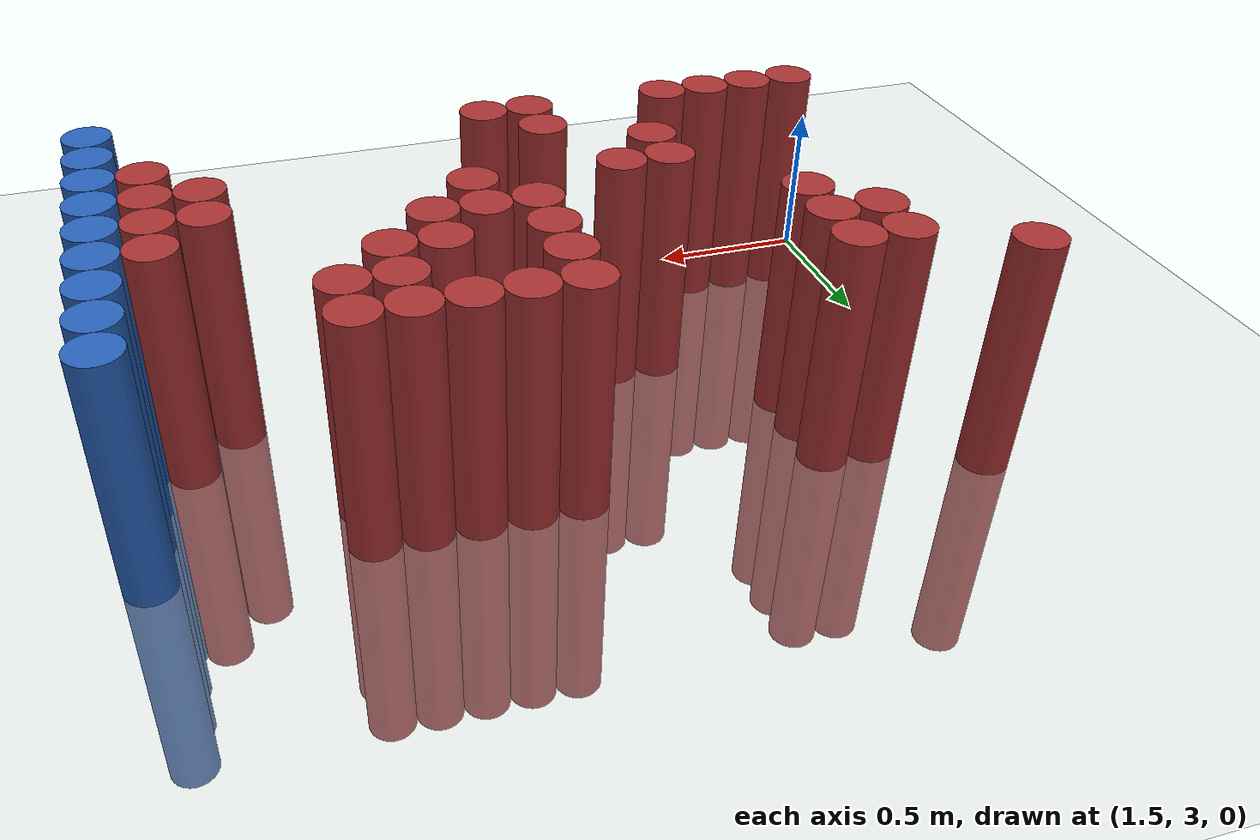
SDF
<sdf version="1.6">
 <world name="default">
  <model name="ground_plane">
   <static>1</static>
   <link name="link">
    <collision name="collision">
     <geometry><plane><normal>0 0 1</normal><size>100 100</size></plane></geometry>
     <surface><friction><ode><mu>100</mu><mu2>50</mu2></ode></friction></surface>
    </collision>
    <visual name="visual">
     <cast_shadows>0</cast_shadows>
     <geometry><plane><normal>0 0 1</normal><size>100 100</size></plane></geometry>
     <material>
      <script><uri>file://media/materials/scripts/gazebo.material</uri><name>Gazebo/Grey</name></script>
     </material>
    </visual>
   </link>
  </model>
  <model name="unit_cylinder_156">
   <static>1</static>
   <pose>3.925000 3.175000 0.000000 0.000000 0.000000 0.000000</pose>
   <link name="link">
    <inertial>
     <mass>1</mass>
     <inertia><ixx>0.145833</ixx><ixy>0</ixy><ixz>0</ixz><iyy>0.145833</iyy><iyz>0</iyz><izz>0.125</izz></inertia>
    </inertial>
    <collision name="collision">
     <geometry><cylinder><radius>0.075000</radius><length>1.5</length></cylinder></geometry>
    </collision>
    <visual name="visual">
     <geometry><cylinder><radius>0.075000</radius><length>1.5</length></cylinder></geometry>
     <material>
      <ambient>0.152000 0.379000 0.720000 1</ambient>
      <diffuse>0.152000 0.379000 0.720000 1</diffuse>
     </material>
     <material>
      <script><name>Gazebo/Grey</name><uri>file://media/materials/scripts/gazebo.material</uri></script>
     </material>
    </visual>
   </link>
  </model>
  <model name="unit_cylinder_158">
   <static>1</static>
   <pose>3.925000 3.325000 0.000000 0.000000 0.000000 0.000000</pose>
   <link name="link">
    <inertial>
     <mass>1</mass>
     <inertia><ixx>0.145833</ixx><ixy>0</ixy><ixz>0</ixz><iyy>0.145833</iyy><iyz>0</iyz><izz>0.125</izz></inertia>
    </inertial>
    <collision name="collision">
     <geometry><cylinder><radius>0.075000</radius><length>1.5</length></cylinder></geometry>
    </collision>
    <visual name="visual">
     <geometry><cylinder><radius>0.075000</radius><length>1.5</length></cylinder></geometry>
     <material>
      <ambient>0.152000 0.379000 0.720000 1</ambient>
      <diffuse>0.152000 0.379000 0.720000 1</diffuse>
     </material>
     <material>
      <script><name>Gazebo/Grey</name><uri>file://media/materials/scripts/gazebo.material</uri></script>
     </material>
    </visual>
   </link>
  </model>
  <model name="unit_cylinder_160">
   <static>1</static>
   <pose>3.925000 3.475000 0.000000 0.000000 0.000000 0.000000</pose>
   <link name="link">
    <inertial>
     <mass>1</mass>
     <inertia><ixx>0.145833</ixx><ixy>0</ixy><ixz>0</ixz><iyy>0.145833</iyy><iyz>0</iyz><izz>0.125</izz></inertia>
    </inertial>
    <collision name="collision">
     <geometry><cylinder><radius>0.075000</radius><length>1.5</length></cylinder></geometry>
    </collision>
    <visual name="visual">
     <geometry><cylinder><radius>0.075000</radius><length>1.5</length></cylinder></geometry>
     <material>
      <ambient>0.152000 0.379000 0.720000 1</ambient>
      <diffuse>0.152000 0.379000 0.720000 1</diffuse>
     </material>
     <material>
      <script><name>Gazebo/Grey</name><uri>file://media/materials/scripts/gazebo.material</uri></script>
     </material>
    </visual>
   </link>
  </model>
  <model name="unit_cylinder_162">
   <static>1</static>
   <pose>3.925000 3.625000 0.000000 0.000000 0.000000 0.000000</pose>
   <link name="link">
    <inertial>
     <mass>1</mass>
     <inertia><ixx>0.145833</ixx><ixy>0</ixy><ixz>0</ixz><iyy>0.145833</iyy><iyz>0</iyz><izz>0.125</izz></inertia>
    </inertial>
    <collision name="collision">
     <geometry><cylinder><radius>0.075000</radius><length>1.5</length></cylinder></geometry>
    </collision>
    <visual name="visual">
     <geometry><cylinder><radius>0.075000</radius><length>1.5</length></cylinder></geometry>
     <material>
      <ambient>0.152000 0.379000 0.720000 1</ambient>
      <diffuse>0.152000 0.379000 0.720000 1</diffuse>
     </material>
     <material>
      <script><name>Gazebo/Grey</name><uri>file://media/materials/scripts/gazebo.material</uri></script>
     </material>
    </visual>
   </link>
  </model>
  <model name="unit_cylinder_164">
   <static>1</static>
   <pose>3.925000 3.775000 0.000000 0.000000 0.000000 0.000000</pose>
   <link name="link">
    <inertial>
     <mass>1</mass>
     <inertia><ixx>0.145833</ixx><ixy>0</ixy><ixz>0</ixz><iyy>0.145833</iyy><iyz>0</iyz><izz>0.125</izz></inertia>
    </inertial>
    <collision name="collision">
     <geometry><cylinder><radius>0.075000</radius><length>1.5</length></cylinder></geometry>
    </collision>
    <visual name="visual">
     <geometry><cylinder><radius>0.075000</radius><length>1.5</length></cylinder></geometry>
     <material>
      <ambient>0.152000 0.379000 0.720000 1</ambient>
      <diffuse>0.152000 0.379000 0.720000 1</diffuse>
     </material>
     <material>
      <script><name>Gazebo/Grey</name><uri>file://media/materials/scripts/gazebo.material</uri></script>
     </material>
    </visual>
   </link>
  </model>
  <model name="unit_cylinder_166">
   <static>1</static>
   <pose>3.925000 3.925000 0.000000 0.000000 0.000000 0.000000</pose>
   <link name="link">
    <inertial>
     <mass>1</mass>
     <inertia><ixx>0.145833</ixx><ixy>0</ixy><ixz>0</ixz><iyy>0.145833</iyy><iyz>0</iyz><izz>0.125</izz></inertia>
    </inertial>
    <collision name="collision">
     <geometry><cylinder><radius>0.075000</radius><length>1.5</length></cylinder></geometry>
    </collision>
    <visual name="visual">
     <geometry><cylinder><radius>0.075000</radius><length>1.5</length></cylinder></geometry>
     <material>
      <ambient>0.152000 0.379000 0.720000 1</ambient>
      <diffuse>0.152000 0.379000 0.720000 1</diffuse>
     </material>
     <material>
      <script><name>Gazebo/Grey</name><uri>file://media/materials/scripts/gazebo.material</uri></script>
     </material>
    </visual>
   </link>
  </model>
  <model name="unit_cylinder_168">
   <static>1</static>
   <pose>3.925000 4.075000 0.000000 0.000000 0.000000 0.000000</pose>
   <link name="link">
    <inertial>
     <mass>1</mass>
     <inertia><ixx>0.145833</ixx><ixy>0</ixy><ixz>0</ixz><iyy>0.145833</iyy><iyz>0</iyz><izz>0.125</izz></inertia>
    </inertial>
    <collision name="collision">
     <geometry><cylinder><radius>0.075000</radius><length>1.5</length></cylinder></geometry>
    </collision>
    <visual name="visual">
     <geometry><cylinder><radius>0.075000</radius><length>1.5</length></cylinder></geometry>
     <material>
      <ambient>0.152000 0.379000 0.720000 1</ambient>
      <diffuse>0.152000 0.379000 0.720000 1</diffuse>
     </material>
     <material>
      <script><name>Gazebo/Grey</name><uri>file://media/materials/scripts/gazebo.material</uri></script>
     </material>
    </visual>
   </link>
  </model>
  <model name="unit_cylinder_170">
   <static>1</static>
   <pose>3.925000 4.225000 0.000000 0.000000 0.000000 0.000000</pose>
   <link name="link">
    <inertial>
     <mass>1</mass>
     <inertia><ixx>0.145833</ixx><ixy>0</ixy><ixz>0</ixz><iyy>0.145833</iyy><iyz>0</iyz><izz>0.125</izz></inertia>
    </inertial>
    <collision name="collision">
     <geometry><cylinder><radius>0.075000</radius><length>1.5</length></cylinder></geometry>
    </collision>
    <visual name="visual">
     <geometry><cylinder><radius>0.075000</radius><length>1.5</length></cylinder></geometry>
     <material>
      <ambient>0.152000 0.379000 0.720000 1</ambient>
      <diffuse>0.152000 0.379000 0.720000 1</diffuse>
     </material>
     <material>
      <script><name>Gazebo/Grey</name><uri>file://media/materials/scripts/gazebo.material</uri></script>
     </material>
    </visual>
   </link>
  </model>
  <model name="unit_cylinder_446">
   <static>1</static>
   <pose>1.525000 4.375000 0.000000 0.000000 0.000000 0.000000</pose>
   <link name="link">
    <inertial>
     <mass>1</mass>
     <inertia><ixx>0.145833</ixx><ixy>0</ixy><ixz>0</ixz><iyy>0.145833</iyy><iyz>0</iyz><izz>0.125</izz></inertia>
    </inertial>
    <collision name="collision">
     <geometry><cylinder><radius>0.075000</radius><length>1.5</length></cylinder></geometry>
    </collision>
    <visual name="visual">
     <geometry><cylinder><radius>0.075000</radius><length>1.5</length></cylinder></geometry>
     <material>
      <ambient>0.648000 0.192000 0.192000 1</ambient>
      <diffuse>0.648000 0.192000 0.192000 1</diffuse>
     </material>
     <material>
      <script><name>Gazebo/Grey</name><uri>file://media/materials/scripts/gazebo.material</uri></script>
     </material>
    </visual>
   </link>
  </model>
  <model name="unit_cylinder_455">
   <static>1</static>
   <pose>1.675000 3.175000 0.000000 0.000000 0.000000 0.000000</pose>
   <link name="link">
    <inertial>
     <mass>1</mass>
     <inertia><ixx>0.145833</ixx><ixy>0</ixy><ixz>0</ixz><iyy>0.145833</iyy><iyz>0</iyz><izz>0.125</izz></inertia>
    </inertial>
    <collision name="collision">
     <geometry><cylinder><radius>0.075000</radius><length>1.5</length></cylinder></geometry>
    </collision>
    <visual name="visual">
     <geometry><cylinder><radius>0.075000</radius><length>1.5</length></cylinder></geometry>
     <material>
      <ambient>0.648000 0.192000 0.192000 1</ambient>
      <diffuse>0.648000 0.192000 0.192000 1</diffuse>
     </material>
     <material>
      <script><name>Gazebo/Grey</name><uri>file://media/materials/scripts/gazebo.material</uri></script>
     </material>
    </visual>
   </link>
  </model>
  <model name="unit_cylinder_463">
   <static>1</static>
   <pose>1.825000 3.175000 0.000000 0.000000 0.000000 0.000000</pose>
   <link name="link">
    <inertial>
     <mass>1</mass>
     <inertia><ixx>0.145833</ixx><ixy>0</ixy><ixz>0</ixz><iyy>0.145833</iyy><iyz>0</iyz><izz>0.125</izz></inertia>
    </inertial>
    <collision name="collision">
     <geometry><cylinder><radius>0.075000</radius><length>1.5</length></cylinder></geometry>
    </collision>
    <visual name="visual">
     <geometry><cylinder><radius>0.075000</radius><length>1.5</length></cylinder></geometry>
     <material>
      <ambient>0.648000 0.192000 0.192000 1</ambient>
      <diffuse>0.648000 0.192000 0.192000 1</diffuse>
     </material>
     <material>
      <script><name>Gazebo/Grey</name><uri>file://media/materials/scripts/gazebo.material</uri></script>
     </material>
    </visual>
   </link>
  </model>
  <model name="unit_cylinder_464">
   <static>1</static>
   <pose>1.825000 4.075000 0.000000 0.000000 0.000000 0.000000</pose>
   <link name="link">
    <inertial>
     <mass>1</mass>
     <inertia><ixx>0.145833</ixx><ixy>0</ixy><ixz>0</ixz><iyy>0.145833</iyy><iyz>0</iyz><izz>0.125</izz></inertia>
    </inertial>
    <collision name="collision">
     <geometry><cylinder><radius>0.075000</radius><length>1.5</length></cylinder></geometry>
    </collision>
    <visual name="visual">
     <geometry><cylinder><radius>0.075000</radius><length>1.5</length></cylinder></geometry>
     <material>
      <ambient>0.648000 0.192000 0.192000 1</ambient>
      <diffuse>0.648000 0.192000 0.192000 1</diffuse>
     </material>
     <material>
      <script><name>Gazebo/Grey</name><uri>file://media/materials/scripts/gazebo.material</uri></script>
     </material>
    </visual>
   </link>
  </model>
  <model name="unit_cylinder_465">
   <static>1</static>
   <pose>1.825000 4.225000 0.000000 0.000000 0.000000 0.000000</pose>
   <link name="link">
    <inertial>
     <mass>1</mass>
     <inertia><ixx>0.145833</ixx><ixy>0</ixy><ixz>0</ixz><iyy>0.145833</iyy><iyz>0</iyz><izz>0.125</izz></inertia>
    </inertial>
    <collision name="collision">
     <geometry><cylinder><radius>0.075000</radius><length>1.5</length></cylinder></geometry>
    </collision>
    <visual name="visual">
     <geometry><cylinder><radius>0.075000</radius><length>1.5</length></cylinder></geometry>
     <material>
      <ambient>0.648000 0.192000 0.192000 1</ambient>
      <diffuse>0.648000 0.192000 0.192000 1</diffuse>
     </material>
     <material>
      <script><name>Gazebo/Grey</name><uri>file://media/materials/scripts/gazebo.material</uri></script>
     </material>
    </visual>
   </link>
  </model>
  <model name="unit_cylinder_472">
   <static>1</static>
   <pose>1.975000 3.175000 0.000000 0.000000 0.000000 0.000000</pose>
   <link name="link">
    <inertial>
     <mass>1</mass>
     <inertia><ixx>0.145833</ixx><ixy>0</ixy><ixz>0</ixz><iyy>0.145833</iyy><iyz>0</iyz><izz>0.125</izz></inertia>
    </inertial>
    <collision name="collision">
     <geometry><cylinder><radius>0.075000</radius><length>1.5</length></cylinder></geometry>
    </collision>
    <visual name="visual">
     <geometry><cylinder><radius>0.075000</radius><length>1.5</length></cylinder></geometry>
     <material>
      <ambient>0.648000 0.192000 0.192000 1</ambient>
      <diffuse>0.648000 0.192000 0.192000 1</diffuse>
     </material>
     <material>
      <script><name>Gazebo/Grey</name><uri>file://media/materials/scripts/gazebo.material</uri></script>
     </material>
    </visual>
   </link>
  </model>
  <model name="unit_cylinder_473">
   <static>1</static>
   <pose>1.975000 3.925000 0.000000 0.000000 0.000000 0.000000</pose>
   <link name="link">
    <inertial>
     <mass>1</mass>
     <inertia><ixx>0.145833</ixx><ixy>0</ixy><ixz>0</ixz><iyy>0.145833</iyy><iyz>0</iyz><izz>0.125</izz></inertia>
    </inertial>
    <collision name="collision">
     <geometry><cylinder><radius>0.075000</radius><length>1.5</length></cylinder></geometry>
    </collision>
    <visual name="visual">
     <geometry><cylinder><radius>0.075000</radius><length>1.5</length></cylinder></geometry>
     <material>
      <ambient>0.648000 0.192000 0.192000 1</ambient>
      <diffuse>0.648000 0.192000 0.192000 1</diffuse>
     </material>
     <material>
      <script><name>Gazebo/Grey</name><uri>file://media/materials/scripts/gazebo.material</uri></script>
     </material>
    </visual>
   </link>
  </model>
  <model name="unit_cylinder_474">
   <static>1</static>
   <pose>1.975000 4.075000 0.000000 0.000000 0.000000 0.000000</pose>
   <link name="link">
    <inertial>
     <mass>1</mass>
     <inertia><ixx>0.145833</ixx><ixy>0</ixy><ixz>0</ixz><iyy>0.145833</iyy><iyz>0</iyz><izz>0.125</izz></inertia>
    </inertial>
    <collision name="collision">
     <geometry><cylinder><radius>0.075000</radius><length>1.5</length></cylinder></geometry>
    </collision>
    <visual name="visual">
     <geometry><cylinder><radius>0.075000</radius><length>1.5</length></cylinder></geometry>
     <material>
      <ambient>0.648000 0.192000 0.192000 1</ambient>
      <diffuse>0.648000 0.192000 0.192000 1</diffuse>
     </material>
     <material>
      <script><name>Gazebo/Grey</name><uri>file://media/materials/scripts/gazebo.material</uri></script>
     </material>
    </visual>
   </link>
  </model>
  <model name="unit_cylinder_475">
   <static>1</static>
   <pose>1.975000 4.225000 0.000000 0.000000 0.000000 0.000000</pose>
   <link name="link">
    <inertial>
     <mass>1</mass>
     <inertia><ixx>0.145833</ixx><ixy>0</ixy><ixz>0</ixz><iyy>0.145833</iyy><iyz>0</iyz><izz>0.125</izz></inertia>
    </inertial>
    <collision name="collision">
     <geometry><cylinder><radius>0.075000</radius><length>1.5</length></cylinder></geometry>
    </collision>
    <visual name="visual">
     <geometry><cylinder><radius>0.075000</radius><length>1.5</length></cylinder></geometry>
     <material>
      <ambient>0.648000 0.192000 0.192000 1</ambient>
      <diffuse>0.648000 0.192000 0.192000 1</diffuse>
     </material>
     <material>
      <script><name>Gazebo/Grey</name><uri>file://media/materials/scripts/gazebo.material</uri></script>
     </material>
    </visual>
   </link>
  </model>
  <model name="unit_cylinder_486">
   <static>1</static>
   <pose>2.125000 3.175000 0.000000 0.000000 0.000000 0.000000</pose>
   <link name="link">
    <inertial>
     <mass>1</mass>
     <inertia><ixx>0.145833</ixx><ixy>0</ixy><ixz>0</ixz><iyy>0.145833</iyy><iyz>0</iyz><izz>0.125</izz></inertia>
    </inertial>
    <collision name="collision">
     <geometry><cylinder><radius>0.075000</radius><length>1.5</length></cylinder></geometry>
    </collision>
    <visual name="visual">
     <geometry><cylinder><radius>0.075000</radius><length>1.5</length></cylinder></geometry>
     <material>
      <ambient>0.648000 0.192000 0.192000 1</ambient>
      <diffuse>0.648000 0.192000 0.192000 1</diffuse>
     </material>
     <material>
      <script><name>Gazebo/Grey</name><uri>file://media/materials/scripts/gazebo.material</uri></script>
     </material>
    </visual>
   </link>
  </model>
  <model name="unit_cylinder_497">
   <static>1</static>
   <pose>2.275000 3.475000 0.000000 0.000000 0.000000 0.000000</pose>
   <link name="link">
    <inertial>
     <mass>1</mass>
     <inertia><ixx>0.145833</ixx><ixy>0</ixy><ixz>0</ixz><iyy>0.145833</iyy><iyz>0</iyz><izz>0.125</izz></inertia>
    </inertial>
    <collision name="collision">
     <geometry><cylinder><radius>0.075000</radius><length>1.5</length></cylinder></geometry>
    </collision>
    <visual name="visual">
     <geometry><cylinder><radius>0.075000</radius><length>1.5</length></cylinder></geometry>
     <material>
      <ambient>0.648000 0.192000 0.192000 1</ambient>
      <diffuse>0.648000 0.192000 0.192000 1</diffuse>
     </material>
     <material>
      <script><name>Gazebo/Grey</name><uri>file://media/materials/scripts/gazebo.material</uri></script>
     </material>
    </visual>
   </link>
  </model>
  <model name="unit_cylinder_498">
   <static>1</static>
   <pose>2.275000 3.625000 0.000000 0.000000 0.000000 0.000000</pose>
   <link name="link">
    <inertial>
     <mass>1</mass>
     <inertia><ixx>0.145833</ixx><ixy>0</ixy><ixz>0</ixz><iyy>0.145833</iyy><iyz>0</iyz><izz>0.125</izz></inertia>
    </inertial>
    <collision name="collision">
     <geometry><cylinder><radius>0.075000</radius><length>1.5</length></cylinder></geometry>
    </collision>
    <visual name="visual">
     <geometry><cylinder><radius>0.075000</radius><length>1.5</length></cylinder></geometry>
     <material>
      <ambient>0.648000 0.192000 0.192000 1</ambient>
      <diffuse>0.648000 0.192000 0.192000 1</diffuse>
     </material>
     <material>
      <script><name>Gazebo/Grey</name><uri>file://media/materials/scripts/gazebo.material</uri></script>
     </material>
    </visual>
   </link>
  </model>
  <model name="unit_cylinder_512">
   <static>1</static>
   <pose>2.425000 3.625000 0.000000 0.000000 0.000000 0.000000</pose>
   <link name="link">
    <inertial>
     <mass>1</mass>
     <inertia><ixx>0.145833</ixx><ixy>0</ixy><ixz>0</ixz><iyy>0.145833</iyy><iyz>0</iyz><izz>0.125</izz></inertia>
    </inertial>
    <collision name="collision">
     <geometry><cylinder><radius>0.075000</radius><length>1.5</length></cylinder></geometry>
    </collision>
    <visual name="visual">
     <geometry><cylinder><radius>0.075000</radius><length>1.5</length></cylinder></geometry>
     <material>
      <ambient>0.648000 0.192000 0.192000 1</ambient>
      <diffuse>0.648000 0.192000 0.192000 1</diffuse>
     </material>
     <material>
      <script><name>Gazebo/Grey</name><uri>file://media/materials/scripts/gazebo.material</uri></script>
     </material>
    </visual>
   </link>
  </model>
  <model name="unit_cylinder_518">
   <static>1</static>
   <pose>2.575000 3.175000 0.000000 0.000000 0.000000 0.000000</pose>
   <link name="link">
    <inertial>
     <mass>1</mass>
     <inertia><ixx>0.145833</ixx><ixy>0</ixy><ixz>0</ixz><iyy>0.145833</iyy><iyz>0</iyz><izz>0.125</izz></inertia>
    </inertial>
    <collision name="collision">
     <geometry><cylinder><radius>0.075000</radius><length>1.5</length></cylinder></geometry>
    </collision>
    <visual name="visual">
     <geometry><cylinder><radius>0.075000</radius><length>1.5</length></cylinder></geometry>
     <material>
      <ambient>0.648000 0.192000 0.192000 1</ambient>
      <diffuse>0.648000 0.192000 0.192000 1</diffuse>
     </material>
     <material>
      <script><name>Gazebo/Grey</name><uri>file://media/materials/scripts/gazebo.material</uri></script>
     </material>
    </visual>
   </link>
  </model>
  <model name="unit_cylinder_519">
   <static>1</static>
   <pose>2.575000 3.325000 0.000000 0.000000 0.000000 0.000000</pose>
   <link name="link">
    <inertial>
     <mass>1</mass>
     <inertia><ixx>0.145833</ixx><ixy>0</ixy><ixz>0</ixz><iyy>0.145833</iyy><iyz>0</iyz><izz>0.125</izz></inertia>
    </inertial>
    <collision name="collision">
     <geometry><cylinder><radius>0.075000</radius><length>1.5</length></cylinder></geometry>
    </collision>
    <visual name="visual">
     <geometry><cylinder><radius>0.075000</radius><length>1.5</length></cylinder></geometry>
     <material>
      <ambient>0.648000 0.192000 0.192000 1</ambient>
      <diffuse>0.648000 0.192000 0.192000 1</diffuse>
     </material>
     <material>
      <script><name>Gazebo/Grey</name><uri>file://media/materials/scripts/gazebo.material</uri></script>
     </material>
    </visual>
   </link>
  </model>
  <model name="unit_cylinder_527">
   <static>1</static>
   <pose>2.725000 3.175000 0.000000 0.000000 0.000000 0.000000</pose>
   <link name="link">
    <inertial>
     <mass>1</mass>
     <inertia><ixx>0.145833</ixx><ixy>0</ixy><ixz>0</ixz><iyy>0.145833</iyy><iyz>0</iyz><izz>0.125</izz></inertia>
    </inertial>
    <collision name="collision">
     <geometry><cylinder><radius>0.075000</radius><length>1.5</length></cylinder></geometry>
    </collision>
    <visual name="visual">
     <geometry><cylinder><radius>0.075000</radius><length>1.5</length></cylinder></geometry>
     <material>
      <ambient>0.648000 0.192000 0.192000 1</ambient>
      <diffuse>0.648000 0.192000 0.192000 1</diffuse>
     </material>
     <material>
      <script><name>Gazebo/Grey</name><uri>file://media/materials/scripts/gazebo.material</uri></script>
     </material>
    </visual>
   </link>
  </model>
  <model name="unit_cylinder_528">
   <static>1</static>
   <pose>2.725000 3.775000 0.000000 0.000000 0.000000 0.000000</pose>
   <link name="link">
    <inertial>
     <mass>1</mass>
     <inertia><ixx>0.145833</ixx><ixy>0</ixy><ixz>0</ixz><iyy>0.145833</iyy><iyz>0</iyz><izz>0.125</izz></inertia>
    </inertial>
    <collision name="collision">
     <geometry><cylinder><radius>0.075000</radius><length>1.5</length></cylinder></geometry>
    </collision>
    <visual name="visual">
     <geometry><cylinder><radius>0.075000</radius><length>1.5</length></cylinder></geometry>
     <material>
      <ambient>0.648000 0.192000 0.192000 1</ambient>
      <diffuse>0.648000 0.192000 0.192000 1</diffuse>
     </material>
     <material>
      <script><name>Gazebo/Grey</name><uri>file://media/materials/scripts/gazebo.material</uri></script>
     </material>
    </visual>
   </link>
  </model>
  <model name="unit_cylinder_529">
   <static>1</static>
   <pose>2.725000 3.925000 0.000000 0.000000 0.000000 0.000000</pose>
   <link name="link">
    <inertial>
     <mass>1</mass>
     <inertia><ixx>0.145833</ixx><ixy>0</ixy><ixz>0</ixz><iyy>0.145833</iyy><iyz>0</iyz><izz>0.125</izz></inertia>
    </inertial>
    <collision name="collision">
     <geometry><cylinder><radius>0.075000</radius><length>1.5</length></cylinder></geometry>
    </collision>
    <visual name="visual">
     <geometry><cylinder><radius>0.075000</radius><length>1.5</length></cylinder></geometry>
     <material>
      <ambient>0.648000 0.192000 0.192000 1</ambient>
      <diffuse>0.648000 0.192000 0.192000 1</diffuse>
     </material>
     <material>
      <script><name>Gazebo/Grey</name><uri>file://media/materials/scripts/gazebo.material</uri></script>
     </material>
    </visual>
   </link>
  </model>
  <model name="unit_cylinder_530">
   <static>1</static>
   <pose>2.725000 4.075000 0.000000 0.000000 0.000000 0.000000</pose>
   <link name="link">
    <inertial>
     <mass>1</mass>
     <inertia><ixx>0.145833</ixx><ixy>0</ixy><ixz>0</ixz><iyy>0.145833</iyy><iyz>0</iyz><izz>0.125</izz></inertia>
    </inertial>
    <collision name="collision">
     <geometry><cylinder><radius>0.075000</radius><length>1.5</length></cylinder></geometry>
    </collision>
    <visual name="visual">
     <geometry><cylinder><radius>0.075000</radius><length>1.5</length></cylinder></geometry>
     <material>
      <ambient>0.648000 0.192000 0.192000 1</ambient>
      <diffuse>0.648000 0.192000 0.192000 1</diffuse>
     </material>
     <material>
      <script><name>Gazebo/Grey</name><uri>file://media/materials/scripts/gazebo.material</uri></script>
     </material>
    </visual>
   </link>
  </model>
  <model name="unit_cylinder_531">
   <static>1</static>
   <pose>2.725000 4.225000 0.000000 0.000000 0.000000 0.000000</pose>
   <link name="link">
    <inertial>
     <mass>1</mass>
     <inertia><ixx>0.145833</ixx><ixy>0</ixy><ixz>0</ixz><iyy>0.145833</iyy><iyz>0</iyz><izz>0.125</izz></inertia>
    </inertial>
    <collision name="collision">
     <geometry><cylinder><radius>0.075000</radius><length>1.5</length></cylinder></geometry>
    </collision>
    <visual name="visual">
     <geometry><cylinder><radius>0.075000</radius><length>1.5</length></cylinder></geometry>
     <material>
      <ambient>0.648000 0.192000 0.192000 1</ambient>
      <diffuse>0.648000 0.192000 0.192000 1</diffuse>
     </material>
     <material>
      <script><name>Gazebo/Grey</name><uri>file://media/materials/scripts/gazebo.material</uri></script>
     </material>
    </visual>
   </link>
  </model>
  <model name="unit_cylinder_538">
   <static>1</static>
   <pose>2.875000 3.625000 0.000000 0.000000 0.000000 0.000000</pose>
   <link name="link">
    <inertial>
     <mass>1</mass>
     <inertia><ixx>0.145833</ixx><ixy>0</ixy><ixz>0</ixz><iyy>0.145833</iyy><iyz>0</iyz><izz>0.125</izz></inertia>
    </inertial>
    <collision name="collision">
     <geometry><cylinder><radius>0.075000</radius><length>1.5</length></cylinder></geometry>
    </collision>
    <visual name="visual">
     <geometry><cylinder><radius>0.075000</radius><length>1.5</length></cylinder></geometry>
     <material>
      <ambient>0.648000 0.192000 0.192000 1</ambient>
      <diffuse>0.648000 0.192000 0.192000 1</diffuse>
     </material>
     <material>
      <script><name>Gazebo/Grey</name><uri>file://media/materials/scripts/gazebo.material</uri></script>
     </material>
    </visual>
   </link>
  </model>
  <model name="unit_cylinder_539">
   <static>1</static>
   <pose>2.875000 3.775000 0.000000 0.000000 0.000000 0.000000</pose>
   <link name="link">
    <inertial>
     <mass>1</mass>
     <inertia><ixx>0.145833</ixx><ixy>0</ixy><ixz>0</ixz><iyy>0.145833</iyy><iyz>0</iyz><izz>0.125</izz></inertia>
    </inertial>
    <collision name="collision">
     <geometry><cylinder><radius>0.075000</radius><length>1.5</length></cylinder></geometry>
    </collision>
    <visual name="visual">
     <geometry><cylinder><radius>0.075000</radius><length>1.5</length></cylinder></geometry>
     <material>
      <ambient>0.648000 0.192000 0.192000 1</ambient>
      <diffuse>0.648000 0.192000 0.192000 1</diffuse>
     </material>
     <material>
      <script><name>Gazebo/Grey</name><uri>file://media/materials/scripts/gazebo.material</uri></script>
     </material>
    </visual>
   </link>
  </model>
  <model name="unit_cylinder_540">
   <static>1</static>
   <pose>2.875000 4.225000 0.000000 0.000000 0.000000 0.000000</pose>
   <link name="link">
    <inertial>
     <mass>1</mass>
     <inertia><ixx>0.145833</ixx><ixy>0</ixy><ixz>0</ixz><iyy>0.145833</iyy><iyz>0</iyz><izz>0.125</izz></inertia>
    </inertial>
    <collision name="collision">
     <geometry><cylinder><radius>0.075000</radius><length>1.5</length></cylinder></geometry>
    </collision>
    <visual name="visual">
     <geometry><cylinder><radius>0.075000</radius><length>1.5</length></cylinder></geometry>
     <material>
      <ambient>0.648000 0.192000 0.192000 1</ambient>
      <diffuse>0.648000 0.192000 0.192000 1</diffuse>
     </material>
     <material>
      <script><name>Gazebo/Grey</name><uri>file://media/materials/scripts/gazebo.material</uri></script>
     </material>
    </visual>
   </link>
  </model>
  <model name="unit_cylinder_545">
   <static>1</static>
   <pose>3.025000 3.775000 0.000000 0.000000 0.000000 0.000000</pose>
   <link name="link">
    <inertial>
     <mass>1</mass>
     <inertia><ixx>0.145833</ixx><ixy>0</ixy><ixz>0</ixz><iyy>0.145833</iyy><iyz>0</iyz><izz>0.125</izz></inertia>
    </inertial>
    <collision name="collision">
     <geometry><cylinder><radius>0.075000</radius><length>1.5</length></cylinder></geometry>
    </collision>
    <visual name="visual">
     <geometry><cylinder><radius>0.075000</radius><length>1.5</length></cylinder></geometry>
     <material>
      <ambient>0.648000 0.192000 0.192000 1</ambient>
      <diffuse>0.648000 0.192000 0.192000 1</diffuse>
     </material>
     <material>
      <script><name>Gazebo/Grey</name><uri>file://media/materials/scripts/gazebo.material</uri></script>
     </material>
    </visual>
   </link>
  </model>
  <model name="unit_cylinder_546">
   <static>1</static>
   <pose>3.025000 3.925000 0.000000 0.000000 0.000000 0.000000</pose>
   <link name="link">
    <inertial>
     <mass>1</mass>
     <inertia><ixx>0.145833</ixx><ixy>0</ixy><ixz>0</ixz><iyy>0.145833</iyy><iyz>0</iyz><izz>0.125</izz></inertia>
    </inertial>
    <collision name="collision">
     <geometry><cylinder><radius>0.075000</radius><length>1.5</length></cylinder></geometry>
    </collision>
    <visual name="visual">
     <geometry><cylinder><radius>0.075000</radius><length>1.5</length></cylinder></geometry>
     <material>
      <ambient>0.648000 0.192000 0.192000 1</ambient>
      <diffuse>0.648000 0.192000 0.192000 1</diffuse>
     </material>
     <material>
      <script><name>Gazebo/Grey</name><uri>file://media/materials/scripts/gazebo.material</uri></script>
     </material>
    </visual>
   </link>
  </model>
  <model name="unit_cylinder_547">
   <static>1</static>
   <pose>3.025000 4.225000 0.000000 0.000000 0.000000 0.000000</pose>
   <link name="link">
    <inertial>
     <mass>1</mass>
     <inertia><ixx>0.145833</ixx><ixy>0</ixy><ixz>0</ixz><iyy>0.145833</iyy><iyz>0</iyz><izz>0.125</izz></inertia>
    </inertial>
    <collision name="collision">
     <geometry><cylinder><radius>0.075000</radius><length>1.5</length></cylinder></geometry>
    </collision>
    <visual name="visual">
     <geometry><cylinder><radius>0.075000</radius><length>1.5</length></cylinder></geometry>
     <material>
      <ambient>0.648000 0.192000 0.192000 1</ambient>
      <diffuse>0.648000 0.192000 0.192000 1</diffuse>
     </material>
     <material>
      <script><name>Gazebo/Grey</name><uri>file://media/materials/scripts/gazebo.material</uri></script>
     </material>
    </visual>
   </link>
  </model>
  <model name="unit_cylinder_550">
   <static>1</static>
   <pose>3.175000 3.925000 0.000000 0.000000 0.000000 0.000000</pose>
   <link name="link">
    <inertial>
     <mass>1</mass>
     <inertia><ixx>0.145833</ixx><ixy>0</ixy><ixz>0</ixz><iyy>0.145833</iyy><iyz>0</iyz><izz>0.125</izz></inertia>
    </inertial>
    <collision name="collision">
     <geometry><cylinder><radius>0.075000</radius><length>1.5</length></cylinder></geometry>
    </collision>
    <visual name="visual">
     <geometry><cylinder><radius>0.075000</radius><length>1.5</length></cylinder></geometry>
     <material>
      <ambient>0.648000 0.192000 0.192000 1</ambient>
      <diffuse>0.648000 0.192000 0.192000 1</diffuse>
     </material>
     <material>
      <script><name>Gazebo/Grey</name><uri>file://media/materials/scripts/gazebo.material</uri></script>
     </material>
    </visual>
   </link>
  </model>
  <model name="unit_cylinder_551">
   <static>1</static>
   <pose>3.175000 4.075000 0.000000 0.000000 0.000000 0.000000</pose>
   <link name="link">
    <inertial>
     <mass>1</mass>
     <inertia><ixx>0.145833</ixx><ixy>0</ixy><ixz>0</ixz><iyy>0.145833</iyy><iyz>0</iyz><izz>0.125</izz></inertia>
    </inertial>
    <collision name="collision">
     <geometry><cylinder><radius>0.075000</radius><length>1.5</length></cylinder></geometry>
    </collision>
    <visual name="visual">
     <geometry><cylinder><radius>0.075000</radius><length>1.5</length></cylinder></geometry>
     <material>
      <ambient>0.648000 0.192000 0.192000 1</ambient>
      <diffuse>0.648000 0.192000 0.192000 1</diffuse>
     </material>
     <material>
      <script><name>Gazebo/Grey</name><uri>file://media/materials/scripts/gazebo.material</uri></script>
     </material>
    </visual>
   </link>
  </model>
  <model name="unit_cylinder_552">
   <static>1</static>
   <pose>3.175000 4.225000 0.000000 0.000000 0.000000 0.000000</pose>
   <link name="link">
    <inertial>
     <mass>1</mass>
     <inertia><ixx>0.145833</ixx><ixy>0</ixy><ixz>0</ixz><iyy>0.145833</iyy><iyz>0</iyz><izz>0.125</izz></inertia>
    </inertial>
    <collision name="collision">
     <geometry><cylinder><radius>0.075000</radius><length>1.5</length></cylinder></geometry>
    </collision>
    <visual name="visual">
     <geometry><cylinder><radius>0.075000</radius><length>1.5</length></cylinder></geometry>
     <material>
      <ambient>0.648000 0.192000 0.192000 1</ambient>
      <diffuse>0.648000 0.192000 0.192000 1</diffuse>
     </material>
     <material>
      <script><name>Gazebo/Grey</name><uri>file://media/materials/scripts/gazebo.material</uri></script>
     </material>
    </visual>
   </link>
  </model>
  <model name="unit_cylinder_554">
   <static>1</static>
   <pose>3.325000 4.075000 0.000000 0.000000 0.000000 0.000000</pose>
   <link name="link">
    <inertial>
     <mass>1</mass>
     <inertia><ixx>0.145833</ixx><ixy>0</ixy><ixz>0</ixz><iyy>0.145833</iyy><iyz>0</iyz><izz>0.125</izz></inertia>
    </inertial>
    <collision name="collision">
     <geometry><cylinder><radius>0.075000</radius><length>1.5</length></cylinder></geometry>
    </collision>
    <visual name="visual">
     <geometry><cylinder><radius>0.075000</radius><length>1.5</length></cylinder></geometry>
     <material>
      <ambient>0.648000 0.192000 0.192000 1</ambient>
      <diffuse>0.648000 0.192000 0.192000 1</diffuse>
     </material>
     <material>
      <script><name>Gazebo/Grey</name><uri>file://media/materials/scripts/gazebo.material</uri></script>
     </material>
    </visual>
   </link>
  </model>
  <model name="unit_cylinder_555">
   <static>1</static>
   <pose>3.325000 4.225000 0.000000 0.000000 0.000000 0.000000</pose>
   <link name="link">
    <inertial>
     <mass>1</mass>
     <inertia><ixx>0.145833</ixx><ixy>0</ixy><ixz>0</ixz><iyy>0.145833</iyy><iyz>0</iyz><izz>0.125</izz></inertia>
    </inertial>
    <collision name="collision">
     <geometry><cylinder><radius>0.075000</radius><length>1.5</length></cylinder></geometry>
    </collision>
    <visual name="visual">
     <geometry><cylinder><radius>0.075000</radius><length>1.5</length></cylinder></geometry>
     <material>
      <ambient>0.648000 0.192000 0.192000 1</ambient>
      <diffuse>0.648000 0.192000 0.192000 1</diffuse>
     </material>
     <material>
      <script><name>Gazebo/Grey</name><uri>file://media/materials/scripts/gazebo.material</uri></script>
     </material>
    </visual>
   </link>
  </model>
  <model name="unit_cylinder_573">
   <static>1</static>
   <pose>3.625000 3.475000 0.000000 0.000000 0.000000 0.000000</pose>
   <link name="link">
    <inertial>
     <mass>1</mass>
     <inertia><ixx>0.145833</ixx><ixy>0</ixy><ixz>0</ixz><iyy>0.145833</iyy><iyz>0</iyz><izz>0.125</izz></inertia>
    </inertial>
    <collision name="collision">
     <geometry><cylinder><radius>0.075000</radius><length>1.5</length></cylinder></geometry>
    </collision>
    <visual name="visual">
     <geometry><cylinder><radius>0.075000</radius><length>1.5</length></cylinder></geometry>
     <material>
      <ambient>0.648000 0.192000 0.192000 1</ambient>
      <diffuse>0.648000 0.192000 0.192000 1</diffuse>
     </material>
     <material>
      <script><name>Gazebo/Grey</name><uri>file://media/materials/scripts/gazebo.material</uri></script>
     </material>
    </visual>
   </link>
  </model>
  <model name="unit_cylinder_574">
   <static>1</static>
   <pose>3.625000 3.625000 0.000000 0.000000 0.000000 0.000000</pose>
   <link name="link">
    <inertial>
     <mass>1</mass>
     <inertia><ixx>0.145833</ixx><ixy>0</ixy><ixz>0</ixz><iyy>0.145833</iyy><iyz>0</iyz><izz>0.125</izz></inertia>
    </inertial>
    <collision name="collision">
     <geometry><cylinder><radius>0.075000</radius><length>1.5</length></cylinder></geometry>
    </collision>
    <visual name="visual">
     <geometry><cylinder><radius>0.075000</radius><length>1.5</length></cylinder></geometry>
     <material>
      <ambient>0.648000 0.192000 0.192000 1</ambient>
      <diffuse>0.648000 0.192000 0.192000 1</diffuse>
     </material>
     <material>
      <script><name>Gazebo/Grey</name><uri>file://media/materials/scripts/gazebo.material</uri></script>
     </material>
    </visual>
   </link>
  </model>
  <model name="unit_cylinder_592">
   <static>1</static>
   <pose>3.775000 3.325000 0.000000 0.000000 0.000000 0.000000</pose>
   <link name="link">
    <inertial>
     <mass>1</mass>
     <inertia><ixx>0.145833</ixx><ixy>0</ixy><ixz>0</ixz><iyy>0.145833</iyy><iyz>0</iyz><izz>0.125</izz></inertia>
    </inertial>
    <collision name="collision">
     <geometry><cylinder><radius>0.075000</radius><length>1.5</length></cylinder></geometry>
    </collision>
    <visual name="visual">
     <geometry><cylinder><radius>0.075000</radius><length>1.5</length></cylinder></geometry>
     <material>
      <ambient>0.648000 0.192000 0.192000 1</ambient>
      <diffuse>0.648000 0.192000 0.192000 1</diffuse>
     </material>
     <material>
      <script><name>Gazebo/Grey</name><uri>file://media/materials/scripts/gazebo.material</uri></script>
     </material>
    </visual>
   </link>
  </model>
  <model name="unit_cylinder_593">
   <static>1</static>
   <pose>3.775000 3.475000 0.000000 0.000000 0.000000 0.000000</pose>
   <link name="link">
    <inertial>
     <mass>1</mass>
     <inertia><ixx>0.145833</ixx><ixy>0</ixy><ixz>0</ixz><iyy>0.145833</iyy><iyz>0</iyz><izz>0.125</izz></inertia>
    </inertial>
    <collision name="collision">
     <geometry><cylinder><radius>0.075000</radius><length>1.5</length></cylinder></geometry>
    </collision>
    <visual name="visual">
     <geometry><cylinder><radius>0.075000</radius><length>1.5</length></cylinder></geometry>
     <material>
      <ambient>0.648000 0.192000 0.192000 1</ambient>
      <diffuse>0.648000 0.192000 0.192000 1</diffuse>
     </material>
     <material>
      <script><name>Gazebo/Grey</name><uri>file://media/materials/scripts/gazebo.material</uri></script>
     </material>
    </visual>
   </link>
  </model>
  <model name="unit_cylinder_594">
   <static>1</static>
   <pose>3.775000 3.625000 0.000000 0.000000 0.000000 0.000000</pose>
   <link name="link">
    <inertial>
     <mass>1</mass>
     <inertia><ixx>0.145833</ixx><ixy>0</ixy><ixz>0</ixz><iyy>0.145833</iyy><iyz>0</iyz><izz>0.125</izz></inertia>
    </inertial>
    <collision name="collision">
     <geometry><cylinder><radius>0.075000</radius><length>1.5</length></cylinder></geometry>
    </collision>
    <visual name="visual">
     <geometry><cylinder><radius>0.075000</radius><length>1.5</length></cylinder></geometry>
     <material>
      <ambient>0.648000 0.192000 0.192000 1</ambient>
      <diffuse>0.648000 0.192000 0.192000 1</diffuse>
     </material>
     <material>
      <script><name>Gazebo/Grey</name><uri>file://media/materials/scripts/gazebo.material</uri></script>
     </material>
    </visual>
   </link>
  </model>
  <model name="unit_cylinder_595">
   <static>1</static>
   <pose>3.775000 3.775000 0.000000 0.000000 0.000000 0.000000</pose>
   <link name="link">
    <inertial>
     <mass>1</mass>
     <inertia><ixx>0.145833</ixx><ixy>0</ixy><ixz>0</ixz><iyy>0.145833</iyy><iyz>0</iyz><izz>0.125</izz></inertia>
    </inertial>
    <collision name="collision">
     <geometry><cylinder><radius>0.075000</radius><length>1.5</length></cylinder></geometry>
    </collision>
    <visual name="visual">
     <geometry><cylinder><radius>0.075000</radius><length>1.5</length></cylinder></geometry>
     <material>
      <ambient>0.648000 0.192000 0.192000 1</ambient>
      <diffuse>0.648000 0.192000 0.192000 1</diffuse>
     </material>
     <material>
      <script><name>Gazebo/Grey</name><uri>file://media/materials/scripts/gazebo.material</uri></script>
     </material>
    </visual>
   </link>
  </model>
  <model name="unit_cylinder_633">
   <static>1</static>
   <pose>3.925000 3.025000 0.000000 0.000000 0.000000 0.000000</pose>
   <link name="link">
    <inertial>
     <mass>1</mass>
     <inertia><ixx>0.145833</ixx><ixy>0</ixy><ixz>0</ixz><iyy>0.145833</iyy><iyz>0</iyz><izz>0.125</izz></inertia>
    </inertial>
    <collision name="collision">
     <geometry><cylinder><radius>0.075000</radius><length>1.5</length></cylinder></geometry>
    </collision>
    <visual name="visual">
     <geometry><cylinder><radius>0.075000</radius><length>1.5</length></cylinder></geometry>
     <material>
      <ambient>0.152000 0.379000 0.720000 1</ambient>
      <diffuse>0.152000 0.379000 0.720000 1</diffuse>
     </material>
     <material>
      <script><name>Gazebo/Grey</name><uri>file://media/materials/scripts/gazebo.material</uri></script>
     </material>
    </visual>
   </link>
  </model>
  <model name="unit_cylinder_634">
   <static>1</static>
   <pose>3.925000 3.175000 0.000000 0.000000 0.000000 0.000000</pose>
   <link name="link">
    <inertial>
     <mass>1</mass>
     <inertia><ixx>0.145833</ixx><ixy>0</ixy><ixz>0</ixz><iyy>0.145833</iyy><iyz>0</iyz><izz>0.125</izz></inertia>
    </inertial>
    <collision name="collision">
     <geometry><cylinder><radius>0.075000</radius><length>1.5</length></cylinder></geometry>
    </collision>
    <visual name="visual">
     <geometry><cylinder><radius>0.075000</radius><length>1.5</length></cylinder></geometry>
     <material>
      <ambient>0.152000 0.379000 0.720000 1</ambient>
      <diffuse>0.152000 0.379000 0.720000 1</diffuse>
     </material>
     <material>
      <script><name>Gazebo/Grey</name><uri>file://media/materials/scripts/gazebo.material</uri></script>
     </material>
    </visual>
   </link>
  </model>
  <model name="unit_cylinder_635">
   <static>1</static>
   <pose>3.925000 3.325000 0.000000 0.000000 0.000000 0.000000</pose>
   <link name="link">
    <inertial>
     <mass>1</mass>
     <inertia><ixx>0.145833</ixx><ixy>0</ixy><ixz>0</ixz><iyy>0.145833</iyy><iyz>0</iyz><izz>0.125</izz></inertia>
    </inertial>
    <collision name="collision">
     <geometry><cylinder><radius>0.075000</radius><length>1.5</length></cylinder></geometry>
    </collision>
    <visual name="visual">
     <geometry><cylinder><radius>0.075000</radius><length>1.5</length></cylinder></geometry>
     <material>
      <ambient>0.152000 0.379000 0.720000 1</ambient>
      <diffuse>0.152000 0.379000 0.720000 1</diffuse>
     </material>
     <material>
      <script><name>Gazebo/Grey</name><uri>file://media/materials/scripts/gazebo.material</uri></script>
     </material>
    </visual>
   </link>
  </model>
  <model name="unit_cylinder_636">
   <static>1</static>
   <pose>3.925000 3.475000 0.000000 0.000000 0.000000 0.000000</pose>
   <link name="link">
    <inertial>
     <mass>1</mass>
     <inertia><ixx>0.145833</ixx><ixy>0</ixy><ixz>0</ixz><iyy>0.145833</iyy><iyz>0</iyz><izz>0.125</izz></inertia>
    </inertial>
    <collision name="collision">
     <geometry><cylinder><radius>0.075000</radius><length>1.5</length></cylinder></geometry>
    </collision>
    <visual name="visual">
     <geometry><cylinder><radius>0.075000</radius><length>1.5</length></cylinder></geometry>
     <material>
      <ambient>0.152000 0.379000 0.720000 1</ambient>
      <diffuse>0.152000 0.379000 0.720000 1</diffuse>
     </material>
     <material>
      <script><name>Gazebo/Grey</name><uri>file://media/materials/scripts/gazebo.material</uri></script>
     </material>
    </visual>
   </link>
  </model>
  <model name="unit_cylinder_637">
   <static>1</static>
   <pose>3.925000 3.625000 0.000000 0.000000 0.000000 0.000000</pose>
   <link name="link">
    <inertial>
     <mass>1</mass>
     <inertia><ixx>0.145833</ixx><ixy>0</ixy><ixz>0</ixz><iyy>0.145833</iyy><iyz>0</iyz><izz>0.125</izz></inertia>
    </inertial>
    <collision name="collision">
     <geometry><cylinder><radius>0.075000</radius><length>1.5</length></cylinder></geometry>
    </collision>
    <visual name="visual">
     <geometry><cylinder><radius>0.075000</radius><length>1.5</length></cylinder></geometry>
     <material>
      <ambient>0.152000 0.379000 0.720000 1</ambient>
      <diffuse>0.152000 0.379000 0.720000 1</diffuse>
     </material>
     <material>
      <script><name>Gazebo/Grey</name><uri>file://media/materials/scripts/gazebo.material</uri></script>
     </material>
    </visual>
   </link>
  </model>
  <model name="unit_cylinder_638">
   <static>1</static>
   <pose>3.925000 3.775000 0.000000 0.000000 0.000000 0.000000</pose>
   <link name="link">
    <inertial>
     <mass>1</mass>
     <inertia><ixx>0.145833</ixx><ixy>0</ixy><ixz>0</ixz><iyy>0.145833</iyy><iyz>0</iyz><izz>0.125</izz></inertia>
    </inertial>
    <collision name="collision">
     <geometry><cylinder><radius>0.075000</radius><length>1.5</length></cylinder></geometry>
    </collision>
    <visual name="visual">
     <geometry><cylinder><radius>0.075000</radius><length>1.5</length></cylinder></geometry>
     <material>
      <ambient>0.152000 0.379000 0.720000 1</ambient>
      <diffuse>0.152000 0.379000 0.720000 1</diffuse>
     </material>
     <material>
      <script><name>Gazebo/Grey</name><uri>file://media/materials/scripts/gazebo.material</uri></script>
     </material>
    </visual>
   </link>
  </model>
  <model name="unit_cylinder_639">
   <static>1</static>
   <pose>3.925000 3.925000 0.000000 0.000000 0.000000 0.000000</pose>
   <link name="link">
    <inertial>
     <mass>1</mass>
     <inertia><ixx>0.145833</ixx><ixy>0</ixy><ixz>0</ixz><iyy>0.145833</iyy><iyz>0</iyz><izz>0.125</izz></inertia>
    </inertial>
    <collision name="collision">
     <geometry><cylinder><radius>0.075000</radius><length>1.5</length></cylinder></geometry>
    </collision>
    <visual name="visual">
     <geometry><cylinder><radius>0.075000</radius><length>1.5</length></cylinder></geometry>
     <material>
      <ambient>0.152000 0.379000 0.720000 1</ambient>
      <diffuse>0.152000 0.379000 0.720000 1</diffuse>
     </material>
     <material>
      <script><name>Gazebo/Grey</name><uri>file://media/materials/scripts/gazebo.material</uri></script>
     </material>
    </visual>
   </link>
  </model>
  <model name="unit_cylinder_640">
   <static>1</static>
   <pose>3.925000 4.075000 0.000000 0.000000 0.000000 0.000000</pose>
   <link name="link">
    <inertial>
     <mass>1</mass>
     <inertia><ixx>0.145833</ixx><ixy>0</ixy><ixz>0</ixz><iyy>0.145833</iyy><iyz>0</iyz><izz>0.125</izz></inertia>
    </inertial>
    <collision name="collision">
     <geometry><cylinder><radius>0.075000</radius><length>1.5</length></cylinder></geometry>
    </collision>
    <visual name="visual">
     <geometry><cylinder><radius>0.075000</radius><length>1.5</length></cylinder></geometry>
     <material>
      <ambient>0.152000 0.379000 0.720000 1</ambient>
      <diffuse>0.152000 0.379000 0.720000 1</diffuse>
     </material>
     <material>
      <script><name>Gazebo/Grey</name><uri>file://media/materials/scripts/gazebo.material</uri></script>
     </material>
    </visual>
   </link>
  </model>
  <model name="unit_cylinder_641">
   <static>1</static>
   <pose>3.925000 4.225000 0.000000 0.000000 0.000000 0.000000</pose>
   <link name="link">
    <inertial>
     <mass>1</mass>
     <inertia><ixx>0.145833</ixx><ixy>0</ixy><ixz>0</ixz><iyy>0.145833</iyy><iyz>0</iyz><izz>0.125</izz></inertia>
    </inertial>
    <collision name="collision">
     <geometry><cylinder><radius>0.075000</radius><length>1.5</length></cylinder></geometry>
    </collision>
    <visual name="visual">
     <geometry><cylinder><radius>0.075000</radius><length>1.5</length></cylinder></geometry>
     <material>
      <ambient>0.152000 0.379000 0.720000 1</ambient>
      <diffuse>0.152000 0.379000 0.720000 1</diffuse>
     </material>
     <material>
      <script><name>Gazebo/Grey</name><uri>file://media/materials/scripts/gazebo.material</uri></script>
     </material>
    </visual>
   </link>
  </model>
 </world>
</sdf>
